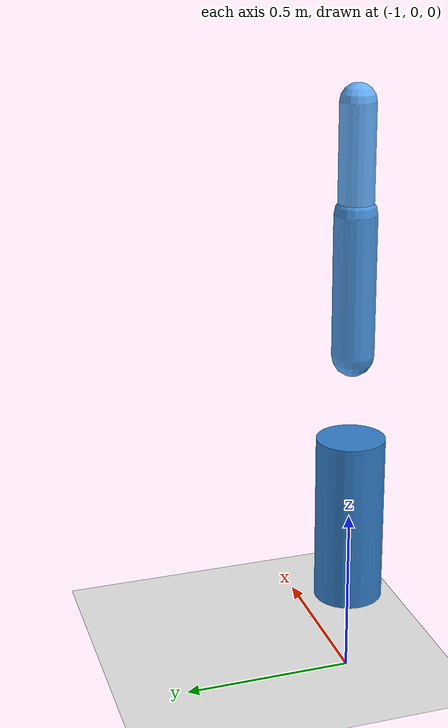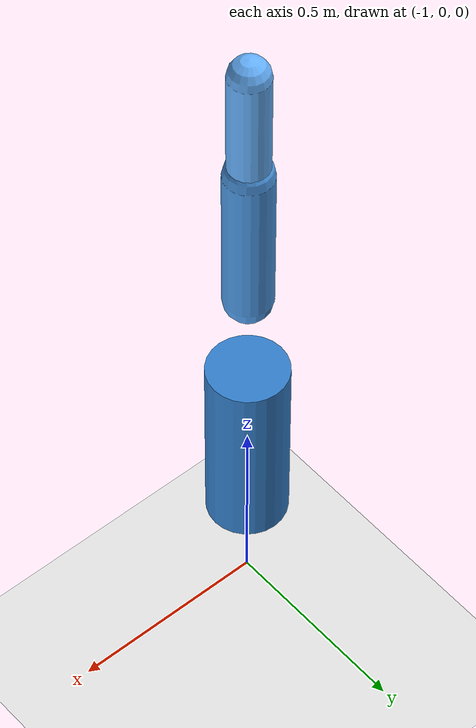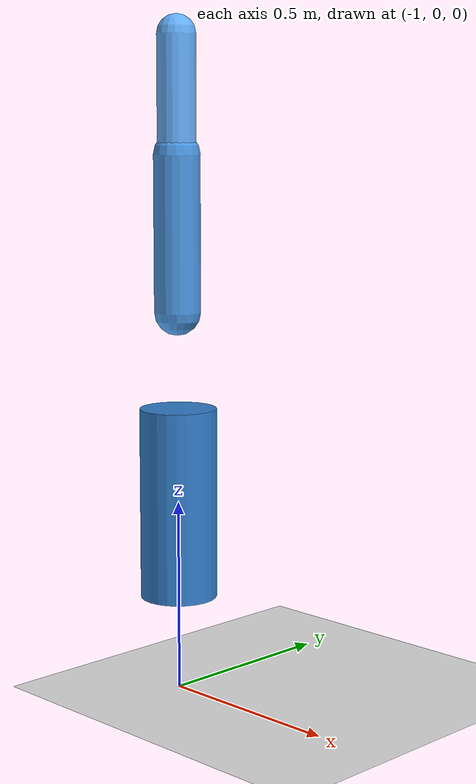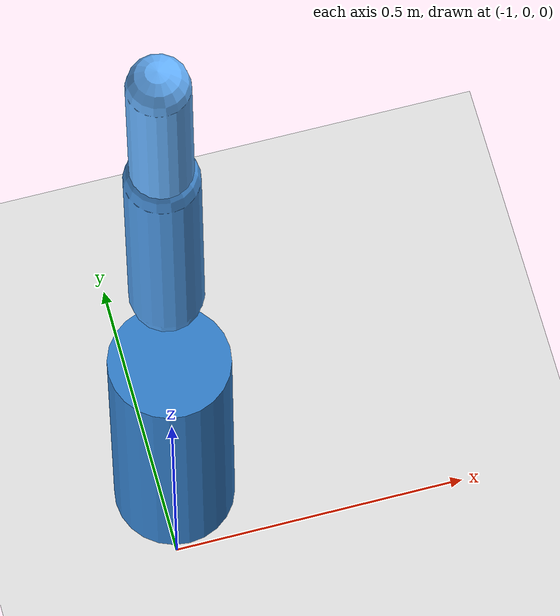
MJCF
<mujoco model="robot_arm">
  <option timestep="0.002" gravity="0 0 -9.81"/>

  <worldbody>
    <light diffuse=".5 .5 .5" pos="0 0 3" dir="0 0 -1"/>
    <geom type="plane" size="5 5 0.1" rgba=".9 .9 .9 1"/>

    <body name="robot_1" pos="-1 0 0.5">
      <joint name="r1_base_rotate" type="hinge" axis="0 0 1"/>
      <geom type="cylinder" size="0.1 0.25" rgba="0.2 0.5 0.8 1"/>
      <body name="r1_link1" pos="0 0 0.5">
        <joint name="r1_shoulder" type="hinge" axis="0 1 0"/>
        <geom type="capsule" size="0.06" fromto="0 0 0 0 0 0.4" rgba="0.3 0.6 0.9 1"/>
        <body name="r1_link2" pos="0 0 0.4">
          <joint name="r1_elbow" type="hinge" axis="0 1 0"/>
          <geom type="capsule" size="0.05" fromto="0 0 0 0 0 0.3" rgba="0.4 0.7 1.0 1"/>
          <body name="r1_end_effector" pos="0 0 0.3">
            <joint name="r1_wrist" type="hinge" axis="0 1 0"/>
            <geom type="sphere" size="0.04" rgba="1 0.3 0.3 1"/>
          </body>
        </body>
      </body>
    </body>
  </worldbody>
</mujoco>
